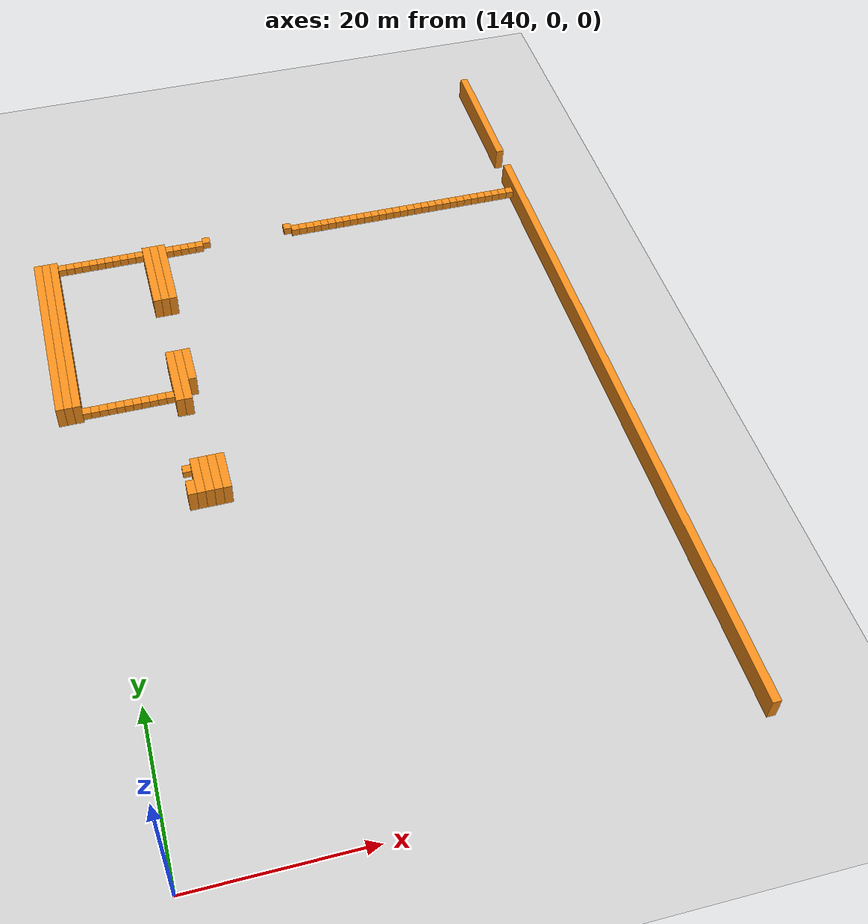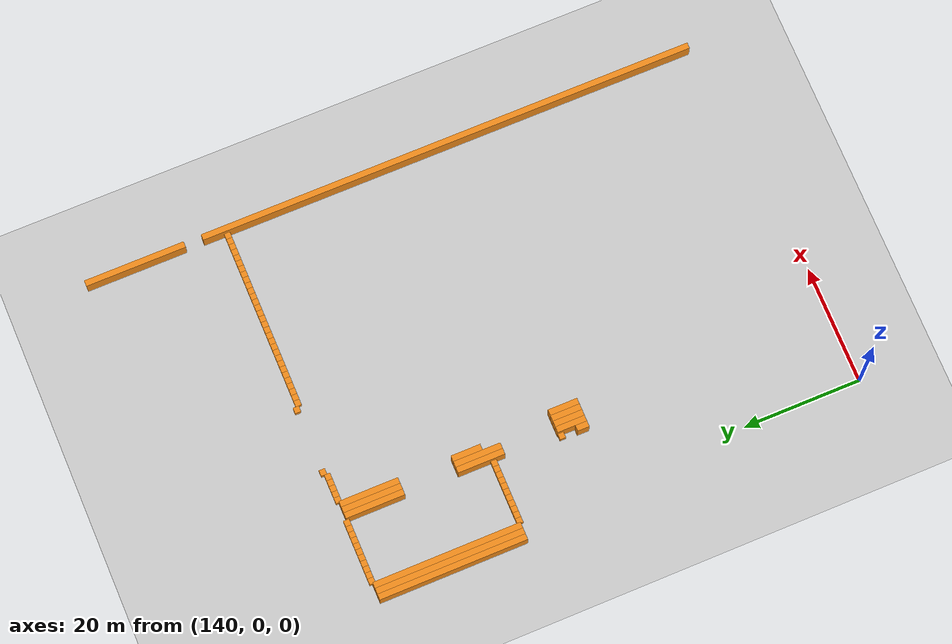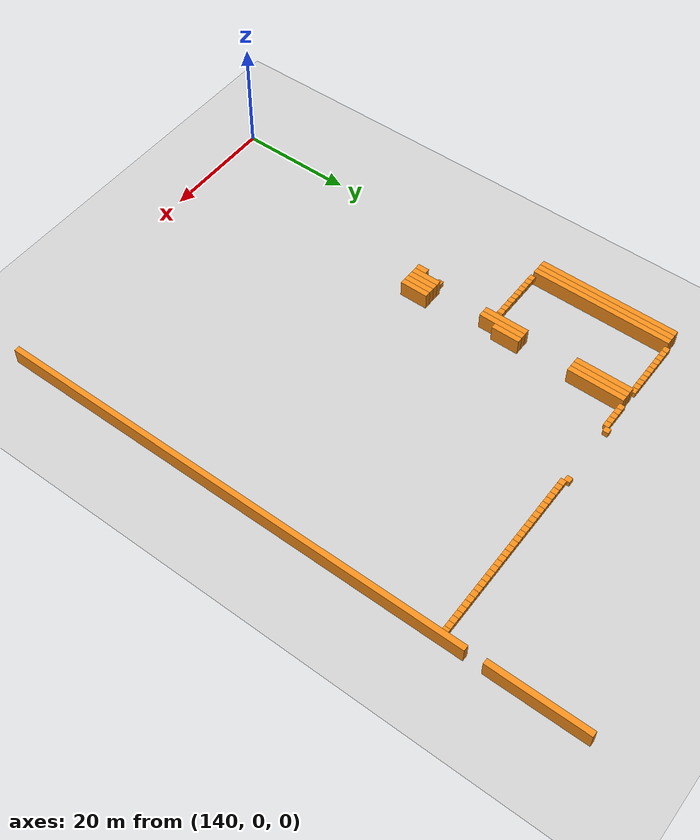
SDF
<sdf version="1.6">
 <world name="default">
  <include><uri>model://ground_plane</uri></include>
  <model name="unit_box_1458">
   <pose>136.50    71.50     1.50 0 0 0</pose>
   <static>1</static>
   <link name="link">
    <inertial>
     <mass>5000</mass>
     <inertia><ixx>200</ixx><ixy>0</ixy><ixz>0</ixz><iyy>200</iyy><iyz>0</iyz><izz>200</izz></inertia>
    </inertial>
    <collision name="collision"><geometry><box><size>1 25 3</size></box></geometry></collision>
    <visual name="visual">
     <geometry><box><size>1 25 3</size></box></geometry>
     <material>
      <script><name>Gazebo/Orange</name><uri>file://media/materials/scripts/gazebo.material</uri></script>
     </material>
    </visual>
   </link>
  </model>
  <model name="unit_box_1472">
   <pose>137.50    71.50     1.50 0 0 0</pose>
   <static>1</static>
   <link name="link">
    <inertial>
     <mass>5000</mass>
     <inertia><ixx>200</ixx><ixy>0</ixy><ixz>0</ixz><iyy>200</iyy><iyz>0</iyz><izz>200</izz></inertia>
    </inertial>
    <collision name="collision"><geometry><box><size>1 25 3</size></box></geometry></collision>
    <visual name="visual">
     <geometry><box><size>1 25 3</size></box></geometry>
     <material>
      <script><name>Gazebo/Orange</name><uri>file://media/materials/scripts/gazebo.material</uri></script>
     </material>
    </visual>
   </link>
  </model>
  <model name="unit_box_1485">
   <pose>138.50    71.50     1.50 0 0 0</pose>
   <static>1</static>
   <link name="link">
    <inertial>
     <mass>5000</mass>
     <inertia><ixx>200</ixx><ixy>0</ixy><ixz>0</ixz><iyy>200</iyy><iyz>0</iyz><izz>200</izz></inertia>
    </inertial>
    <collision name="collision"><geometry><box><size>1 25 3</size></box></geometry></collision>
    <visual name="visual">
     <geometry><box><size>1 25 3</size></box></geometry>
     <material>
      <script><name>Gazebo/Orange</name><uri>file://media/materials/scripts/gazebo.material</uri></script>
     </material>
    </visual>
   </link>
  </model>
  <model name="unit_box_1498">
   <pose>139.50    59.00     1.50 0 0 0</pose>
   <static>1</static>
   <link name="link">
    <inertial>
     <mass>5000</mass>
     <inertia><ixx>200</ixx><ixy>0</ixy><ixz>0</ixz><iyy>200</iyy><iyz>0</iyz><izz>200</izz></inertia>
    </inertial>
    <collision name="collision"><geometry><box><size>1 1 1</size></box></geometry></collision>
    <visual name="visual">
     <geometry><box><size>1 1 1</size></box></geometry>
     <material>
      <script><name>Gazebo/Orange</name><uri>file://media/materials/scripts/gazebo.material</uri></script>
     </material>
    </visual>
   </link>
  </model>
  <model name="unit_box_1499">
   <pose>139.50    84.00     1.50 0 0 0</pose>
   <static>1</static>
   <link name="link">
    <inertial>
     <mass>5000</mass>
     <inertia><ixx>200</ixx><ixy>0</ixy><ixz>0</ixz><iyy>200</iyy><iyz>0</iyz><izz>200</izz></inertia>
    </inertial>
    <collision name="collision"><geometry><box><size>1 1 1</size></box></geometry></collision>
    <visual name="visual">
     <geometry><box><size>1 1 1</size></box></geometry>
     <material>
      <script><name>Gazebo/Orange</name><uri>file://media/materials/scripts/gazebo.material</uri></script>
     </material>
    </visual>
   </link>
  </model>
  <model name="unit_box_1511">
   <pose>140.50    59.00     1.50 0 0 0</pose>
   <static>1</static>
   <link name="link">
    <inertial>
     <mass>5000</mass>
     <inertia><ixx>200</ixx><ixy>0</ixy><ixz>0</ixz><iyy>200</iyy><iyz>0</iyz><izz>200</izz></inertia>
    </inertial>
    <collision name="collision"><geometry><box><size>1 1 1</size></box></geometry></collision>
    <visual name="visual">
     <geometry><box><size>1 1 1</size></box></geometry>
     <material>
      <script><name>Gazebo/Orange</name><uri>file://media/materials/scripts/gazebo.material</uri></script>
     </material>
    </visual>
   </link>
  </model>
  <model name="unit_box_1512">
   <pose>140.50    84.00     1.50 0 0 0</pose>
   <static>1</static>
   <link name="link">
    <inertial>
     <mass>5000</mass>
     <inertia><ixx>200</ixx><ixy>0</ixy><ixz>0</ixz><iyy>200</iyy><iyz>0</iyz><izz>200</izz></inertia>
    </inertial>
    <collision name="collision"><geometry><box><size>1 1 1</size></box></geometry></collision>
    <visual name="visual">
     <geometry><box><size>1 1 1</size></box></geometry>
     <material>
      <script><name>Gazebo/Orange</name><uri>file://media/materials/scripts/gazebo.material</uri></script>
     </material>
    </visual>
   </link>
  </model>
  <model name="unit_box_1525">
   <pose>141.50    59.00     1.50 0 0 0</pose>
   <static>1</static>
   <link name="link">
    <inertial>
     <mass>5000</mass>
     <inertia><ixx>200</ixx><ixy>0</ixy><ixz>0</ixz><iyy>200</iyy><iyz>0</iyz><izz>200</izz></inertia>
    </inertial>
    <collision name="collision"><geometry><box><size>1 1 1</size></box></geometry></collision>
    <visual name="visual">
     <geometry><box><size>1 1 1</size></box></geometry>
     <material>
      <script><name>Gazebo/Orange</name><uri>file://media/materials/scripts/gazebo.material</uri></script>
     </material>
    </visual>
   </link>
  </model>
  <model name="unit_box_1526">
   <pose>141.50    84.00     1.50 0 0 0</pose>
   <static>1</static>
   <link name="link">
    <inertial>
     <mass>5000</mass>
     <inertia><ixx>200</ixx><ixy>0</ixy><ixz>0</ixz><iyy>200</iyy><iyz>0</iyz><izz>200</izz></inertia>
    </inertial>
    <collision name="collision"><geometry><box><size>1 1 1</size></box></geometry></collision>
    <visual name="visual">
     <geometry><box><size>1 1 1</size></box></geometry>
     <material>
      <script><name>Gazebo/Orange</name><uri>file://media/materials/scripts/gazebo.material</uri></script>
     </material>
    </visual>
   </link>
  </model>
  <model name="unit_box_1533">
   <pose>142.50    59.00     1.50 0 0 0</pose>
   <static>1</static>
   <link name="link">
    <inertial>
     <mass>5000</mass>
     <inertia><ixx>200</ixx><ixy>0</ixy><ixz>0</ixz><iyy>200</iyy><iyz>0</iyz><izz>200</izz></inertia>
    </inertial>
    <collision name="collision"><geometry><box><size>1 1 1</size></box></geometry></collision>
    <visual name="visual">
     <geometry><box><size>1 1 1</size></box></geometry>
     <material>
      <script><name>Gazebo/Orange</name><uri>file://media/materials/scripts/gazebo.material</uri></script>
     </material>
    </visual>
   </link>
  </model>
  <model name="unit_box_1534">
   <pose>142.50    84.00     1.50 0 0 0</pose>
   <static>1</static>
   <link name="link">
    <inertial>
     <mass>5000</mass>
     <inertia><ixx>200</ixx><ixy>0</ixy><ixz>0</ixz><iyy>200</iyy><iyz>0</iyz><izz>200</izz></inertia>
    </inertial>
    <collision name="collision"><geometry><box><size>1 1 1</size></box></geometry></collision>
    <visual name="visual">
     <geometry><box><size>1 1 1</size></box></geometry>
     <material>
      <script><name>Gazebo/Orange</name><uri>file://media/materials/scripts/gazebo.material</uri></script>
     </material>
    </visual>
   </link>
  </model>
  <model name="unit_box_1540">
   <pose>143.50    59.00     1.50 0 0 0</pose>
   <static>1</static>
   <link name="link">
    <inertial>
     <mass>5000</mass>
     <inertia><ixx>200</ixx><ixy>0</ixy><ixz>0</ixz><iyy>200</iyy><iyz>0</iyz><izz>200</izz></inertia>
    </inertial>
    <collision name="collision"><geometry><box><size>1 1 1</size></box></geometry></collision>
    <visual name="visual">
     <geometry><box><size>1 1 1</size></box></geometry>
     <material>
      <script><name>Gazebo/Orange</name><uri>file://media/materials/scripts/gazebo.material</uri></script>
     </material>
    </visual>
   </link>
  </model>
  <model name="unit_box_1541">
   <pose>143.50    84.00     1.50 0 0 0</pose>
   <static>1</static>
   <link name="link">
    <inertial>
     <mass>5000</mass>
     <inertia><ixx>200</ixx><ixy>0</ixy><ixz>0</ixz><iyy>200</iyy><iyz>0</iyz><izz>200</izz></inertia>
    </inertial>
    <collision name="collision"><geometry><box><size>1 1 1</size></box></geometry></collision>
    <visual name="visual">
     <geometry><box><size>1 1 1</size></box></geometry>
     <material>
      <script><name>Gazebo/Orange</name><uri>file://media/materials/scripts/gazebo.material</uri></script>
     </material>
    </visual>
   </link>
  </model>
  <model name="unit_box_1547">
   <pose>144.50    59.00     1.50 0 0 0</pose>
   <static>1</static>
   <link name="link">
    <inertial>
     <mass>5000</mass>
     <inertia><ixx>200</ixx><ixy>0</ixy><ixz>0</ixz><iyy>200</iyy><iyz>0</iyz><izz>200</izz></inertia>
    </inertial>
    <collision name="collision"><geometry><box><size>1 1 1</size></box></geometry></collision>
    <visual name="visual">
     <geometry><box><size>1 1 1</size></box></geometry>
     <material>
      <script><name>Gazebo/Orange</name><uri>file://media/materials/scripts/gazebo.material</uri></script>
     </material>
    </visual>
   </link>
  </model>
  <model name="unit_box_1548">
   <pose>144.50    84.00     1.50 0 0 0</pose>
   <static>1</static>
   <link name="link">
    <inertial>
     <mass>5000</mass>
     <inertia><ixx>200</ixx><ixy>0</ixy><ixz>0</ixz><iyy>200</iyy><iyz>0</iyz><izz>200</izz></inertia>
    </inertial>
    <collision name="collision"><geometry><box><size>1 1 1</size></box></geometry></collision>
    <visual name="visual">
     <geometry><box><size>1 1 1</size></box></geometry>
     <material>
      <script><name>Gazebo/Orange</name><uri>file://media/materials/scripts/gazebo.material</uri></script>
     </material>
    </visual>
   </link>
  </model>
  <model name="unit_box_1554">
   <pose>145.50    59.00     1.50 0 0 0</pose>
   <static>1</static>
   <link name="link">
    <inertial>
     <mass>5000</mass>
     <inertia><ixx>200</ixx><ixy>0</ixy><ixz>0</ixz><iyy>200</iyy><iyz>0</iyz><izz>200</izz></inertia>
    </inertial>
    <collision name="collision"><geometry><box><size>1 1 1</size></box></geometry></collision>
    <visual name="visual">
     <geometry><box><size>1 1 1</size></box></geometry>
     <material>
      <script><name>Gazebo/Orange</name><uri>file://media/materials/scripts/gazebo.material</uri></script>
     </material>
    </visual>
   </link>
  </model>
  <model name="unit_box_1555">
   <pose>145.50    84.00     1.50 0 0 0</pose>
   <static>1</static>
   <link name="link">
    <inertial>
     <mass>5000</mass>
     <inertia><ixx>200</ixx><ixy>0</ixy><ixz>0</ixz><iyy>200</iyy><iyz>0</iyz><izz>200</izz></inertia>
    </inertial>
    <collision name="collision"><geometry><box><size>1 1 1</size></box></geometry></collision>
    <visual name="visual">
     <geometry><box><size>1 1 1</size></box></geometry>
     <material>
      <script><name>Gazebo/Orange</name><uri>file://media/materials/scripts/gazebo.material</uri></script>
     </material>
    </visual>
   </link>
  </model>
  <model name="unit_box_1561">
   <pose>146.50    59.00     1.50 0 0 0</pose>
   <static>1</static>
   <link name="link">
    <inertial>
     <mass>5000</mass>
     <inertia><ixx>200</ixx><ixy>0</ixy><ixz>0</ixz><iyy>200</iyy><iyz>0</iyz><izz>200</izz></inertia>
    </inertial>
    <collision name="collision"><geometry><box><size>1 1 1</size></box></geometry></collision>
    <visual name="visual">
     <geometry><box><size>1 1 1</size></box></geometry>
     <material>
      <script><name>Gazebo/Orange</name><uri>file://media/materials/scripts/gazebo.material</uri></script>
     </material>
    </visual>
   </link>
  </model>
  <model name="unit_box_1562">
   <pose>146.50    84.00     1.50 0 0 0</pose>
   <static>1</static>
   <link name="link">
    <inertial>
     <mass>5000</mass>
     <inertia><ixx>200</ixx><ixy>0</ixy><ixz>0</ixz><iyy>200</iyy><iyz>0</iyz><izz>200</izz></inertia>
    </inertial>
    <collision name="collision"><geometry><box><size>1 1 1</size></box></geometry></collision>
    <visual name="visual">
     <geometry><box><size>1 1 1</size></box></geometry>
     <material>
      <script><name>Gazebo/Orange</name><uri>file://media/materials/scripts/gazebo.material</uri></script>
     </material>
    </visual>
   </link>
  </model>
  <model name="unit_box_1568">
   <pose>147.50    59.00     1.50 0 0 0</pose>
   <static>1</static>
   <link name="link">
    <inertial>
     <mass>5000</mass>
     <inertia><ixx>200</ixx><ixy>0</ixy><ixz>0</ixz><iyy>200</iyy><iyz>0</iyz><izz>200</izz></inertia>
    </inertial>
    <collision name="collision"><geometry><box><size>1 1 1</size></box></geometry></collision>
    <visual name="visual">
     <geometry><box><size>1 1 1</size></box></geometry>
     <material>
      <script><name>Gazebo/Orange</name><uri>file://media/materials/scripts/gazebo.material</uri></script>
     </material>
    </visual>
   </link>
  </model>
  <model name="unit_box_1569">
   <pose>147.50    84.00     1.50 0 0 0</pose>
   <static>1</static>
   <link name="link">
    <inertial>
     <mass>5000</mass>
     <inertia><ixx>200</ixx><ixy>0</ixy><ixz>0</ixz><iyy>200</iyy><iyz>0</iyz><izz>200</izz></inertia>
    </inertial>
    <collision name="collision"><geometry><box><size>1 1 1</size></box></geometry></collision>
    <visual name="visual">
     <geometry><box><size>1 1 1</size></box></geometry>
     <material>
      <script><name>Gazebo/Orange</name><uri>file://media/materials/scripts/gazebo.material</uri></script>
     </material>
    </visual>
   </link>
  </model>
  <model name="unit_box_1576">
   <pose>148.50    59.00     1.50 0 0 0</pose>
   <static>1</static>
   <link name="link">
    <inertial>
     <mass>5000</mass>
     <inertia><ixx>200</ixx><ixy>0</ixy><ixz>0</ixz><iyy>200</iyy><iyz>0</iyz><izz>200</izz></inertia>
    </inertial>
    <collision name="collision"><geometry><box><size>1 1 1</size></box></geometry></collision>
    <visual name="visual">
     <geometry><box><size>1 1 1</size></box></geometry>
     <material>
      <script><name>Gazebo/Orange</name><uri>file://media/materials/scripts/gazebo.material</uri></script>
     </material>
    </visual>
   </link>
  </model>
  <model name="unit_box_1577">
   <pose>148.50    84.00     1.50 0 0 0</pose>
   <static>1</static>
   <link name="link">
    <inertial>
     <mass>5000</mass>
     <inertia><ixx>200</ixx><ixy>0</ixy><ixz>0</ixz><iyy>200</iyy><iyz>0</iyz><izz>200</izz></inertia>
    </inertial>
    <collision name="collision"><geometry><box><size>1 1 1</size></box></geometry></collision>
    <visual name="visual">
     <geometry><box><size>1 1 1</size></box></geometry>
     <material>
      <script><name>Gazebo/Orange</name><uri>file://media/materials/scripts/gazebo.material</uri></script>
     </material>
    </visual>
   </link>
  </model>
  <model name="unit_box_1583">
   <pose>149.50    44.00     1.50 0 0 0</pose>
   <static>1</static>
   <link name="link">
    <inertial>
     <mass>5000</mass>
     <inertia><ixx>200</ixx><ixy>0</ixy><ixz>0</ixz><iyy>200</iyy><iyz>0</iyz><izz>200</izz></inertia>
    </inertial>
    <collision name="collision"><geometry><box><size>1 2 3</size></box></geometry></collision>
    <visual name="visual">
     <geometry><box><size>1 2 3</size></box></geometry>
     <material>
      <script><name>Gazebo/Orange</name><uri>file://media/materials/scripts/gazebo.material</uri></script>
     </material>
    </visual>
   </link>
  </model>
  <model name="unit_box_1584">
   <pose>149.50    47.50     1.50 0 0 0</pose>
   <static>1</static>
   <link name="link">
    <inertial>
     <mass>5000</mass>
     <inertia><ixx>200</ixx><ixy>0</ixy><ixz>0</ixz><iyy>200</iyy><iyz>0</iyz><izz>200</izz></inertia>
    </inertial>
    <collision name="collision"><geometry><box><size>1 1 1</size></box></geometry></collision>
    <visual name="visual">
     <geometry><box><size>1 1 1</size></box></geometry>
     <material>
      <script><name>Gazebo/Orange</name><uri>file://media/materials/scripts/gazebo.material</uri></script>
     </material>
    </visual>
   </link>
  </model>
  <model name="unit_box_1585">
   <pose>149.50    59.00     1.50 0 0 0</pose>
   <static>1</static>
   <link name="link">
    <inertial>
     <mass>5000</mass>
     <inertia><ixx>200</ixx><ixy>0</ixy><ixz>0</ixz><iyy>200</iyy><iyz>0</iyz><izz>200</izz></inertia>
    </inertial>
    <collision name="collision"><geometry><box><size>1 1 1</size></box></geometry></collision>
    <visual name="visual">
     <geometry><box><size>1 1 1</size></box></geometry>
     <material>
      <script><name>Gazebo/Orange</name><uri>file://media/materials/scripts/gazebo.material</uri></script>
     </material>
    </visual>
   </link>
  </model>
  <model name="unit_box_1586">
   <pose>149.50    84.00     1.50 0 0 0</pose>
   <static>1</static>
   <link name="link">
    <inertial>
     <mass>5000</mass>
     <inertia><ixx>200</ixx><ixy>0</ixy><ixz>0</ixz><iyy>200</iyy><iyz>0</iyz><izz>200</izz></inertia>
    </inertial>
    <collision name="collision"><geometry><box><size>1 1 1</size></box></geometry></collision>
    <visual name="visual">
     <geometry><box><size>1 1 1</size></box></geometry>
     <material>
      <script><name>Gazebo/Orange</name><uri>file://media/materials/scripts/gazebo.material</uri></script>
     </material>
    </visual>
   </link>
  </model>
  <model name="unit_box_1592">
   <pose>150.50    45.50     1.50 0 0 0</pose>
   <static>1</static>
   <link name="link">
    <inertial>
     <mass>5000</mass>
     <inertia><ixx>200</ixx><ixy>0</ixy><ixz>0</ixz><iyy>200</iyy><iyz>0</iyz><izz>200</izz></inertia>
    </inertial>
    <collision name="collision"><geometry><box><size>1 5 3</size></box></geometry></collision>
    <visual name="visual">
     <geometry><box><size>1 5 3</size></box></geometry>
     <material>
      <script><name>Gazebo/Orange</name><uri>file://media/materials/scripts/gazebo.material</uri></script>
     </material>
    </visual>
   </link>
  </model>
  <model name="unit_box_1593">
   <pose>150.50    61.00     1.50 0 0 0</pose>
   <static>1</static>
   <link name="link">
    <inertial>
     <mass>5000</mass>
     <inertia><ixx>200</ixx><ixy>0</ixy><ixz>0</ixz><iyy>200</iyy><iyz>0</iyz><izz>200</izz></inertia>
    </inertial>
    <collision name="collision"><geometry><box><size>1 8 3</size></box></geometry></collision>
    <visual name="visual">
     <geometry><box><size>1 8 3</size></box></geometry>
     <material>
      <script><name>Gazebo/Orange</name><uri>file://media/materials/scripts/gazebo.material</uri></script>
     </material>
    </visual>
   </link>
  </model>
  <model name="unit_box_1594">
   <pose>150.50    79.00     1.50 0 0 0</pose>
   <static>1</static>
   <link name="link">
    <inertial>
     <mass>5000</mass>
     <inertia><ixx>200</ixx><ixy>0</ixy><ixz>0</ixz><iyy>200</iyy><iyz>0</iyz><izz>200</izz></inertia>
    </inertial>
    <collision name="collision"><geometry><box><size>1 10 3</size></box></geometry></collision>
    <visual name="visual">
     <geometry><box><size>1 10 3</size></box></geometry>
     <material>
      <script><name>Gazebo/Orange</name><uri>file://media/materials/scripts/gazebo.material</uri></script>
     </material>
    </visual>
   </link>
  </model>
  <model name="unit_box_1600">
   <pose>151.50    45.50     1.50 0 0 0</pose>
   <static>1</static>
   <link name="link">
    <inertial>
     <mass>5000</mass>
     <inertia><ixx>200</ixx><ixy>0</ixy><ixz>0</ixz><iyy>200</iyy><iyz>0</iyz><izz>200</izz></inertia>
    </inertial>
    <collision name="collision"><geometry><box><size>1 5 3</size></box></geometry></collision>
    <visual name="visual">
     <geometry><box><size>1 5 3</size></box></geometry>
     <material>
      <script><name>Gazebo/Orange</name><uri>file://media/materials/scripts/gazebo.material</uri></script>
     </material>
    </visual>
   </link>
  </model>
  <model name="unit_box_1601">
   <pose>151.50    61.00     1.50 0 0 0</pose>
   <static>1</static>
   <link name="link">
    <inertial>
     <mass>5000</mass>
     <inertia><ixx>200</ixx><ixy>0</ixy><ixz>0</ixz><iyy>200</iyy><iyz>0</iyz><izz>200</izz></inertia>
    </inertial>
    <collision name="collision"><geometry><box><size>1 8 3</size></box></geometry></collision>
    <visual name="visual">
     <geometry><box><size>1 8 3</size></box></geometry>
     <material>
      <script><name>Gazebo/Orange</name><uri>file://media/materials/scripts/gazebo.material</uri></script>
     </material>
    </visual>
   </link>
  </model>
  <model name="unit_box_1602">
   <pose>151.50    79.00     1.50 0 0 0</pose>
   <static>1</static>
   <link name="link">
    <inertial>
     <mass>5000</mass>
     <inertia><ixx>200</ixx><ixy>0</ixy><ixz>0</ixz><iyy>200</iyy><iyz>0</iyz><izz>200</izz></inertia>
    </inertial>
    <collision name="collision"><geometry><box><size>1 10 3</size></box></geometry></collision>
    <visual name="visual">
     <geometry><box><size>1 10 3</size></box></geometry>
     <material>
      <script><name>Gazebo/Orange</name><uri>file://media/materials/scripts/gazebo.material</uri></script>
     </material>
    </visual>
   </link>
  </model>
  <model name="unit_box_1609">
   <pose>152.50    45.50     1.50 0 0 0</pose>
   <static>1</static>
   <link name="link">
    <inertial>
     <mass>5000</mass>
     <inertia><ixx>200</ixx><ixy>0</ixy><ixz>0</ixz><iyy>200</iyy><iyz>0</iyz><izz>200</izz></inertia>
    </inertial>
    <collision name="collision"><geometry><box><size>1 5 3</size></box></geometry></collision>
    <visual name="visual">
     <geometry><box><size>1 5 3</size></box></geometry>
     <material>
      <script><name>Gazebo/Orange</name><uri>file://media/materials/scripts/gazebo.material</uri></script>
     </material>
    </visual>
   </link>
  </model>
  <model name="unit_box_1610">
   <pose>152.50    62.50     1.50 0 0 0</pose>
   <static>1</static>
   <link name="link">
    <inertial>
     <mass>5000</mass>
     <inertia><ixx>200</ixx><ixy>0</ixy><ixz>0</ixz><iyy>200</iyy><iyz>0</iyz><izz>200</izz></inertia>
    </inertial>
    <collision name="collision"><geometry><box><size>1 5 3</size></box></geometry></collision>
    <visual name="visual">
     <geometry><box><size>1 5 3</size></box></geometry>
     <material>
      <script><name>Gazebo/Orange</name><uri>file://media/materials/scripts/gazebo.material</uri></script>
     </material>
    </visual>
   </link>
  </model>
  <model name="unit_box_1611">
   <pose>152.50    79.00     1.50 0 0 0</pose>
   <static>1</static>
   <link name="link">
    <inertial>
     <mass>5000</mass>
     <inertia><ixx>200</ixx><ixy>0</ixy><ixz>0</ixz><iyy>200</iyy><iyz>0</iyz><izz>200</izz></inertia>
    </inertial>
    <collision name="collision"><geometry><box><size>1 10 3</size></box></geometry></collision>
    <visual name="visual">
     <geometry><box><size>1 10 3</size></box></geometry>
     <material>
      <script><name>Gazebo/Orange</name><uri>file://media/materials/scripts/gazebo.material</uri></script>
     </material>
    </visual>
   </link>
  </model>
  <model name="unit_box_1618">
   <pose>153.50    45.50     1.50 0 0 0</pose>
   <static>1</static>
   <link name="link">
    <inertial>
     <mass>5000</mass>
     <inertia><ixx>200</ixx><ixy>0</ixy><ixz>0</ixz><iyy>200</iyy><iyz>0</iyz><izz>200</izz></inertia>
    </inertial>
    <collision name="collision"><geometry><box><size>1 5 3</size></box></geometry></collision>
    <visual name="visual">
     <geometry><box><size>1 5 3</size></box></geometry>
     <material>
      <script><name>Gazebo/Orange</name><uri>file://media/materials/scripts/gazebo.material</uri></script>
     </material>
    </visual>
   </link>
  </model>
  <model name="unit_box_1619">
   <pose>153.50    84.00     1.50 0 0 0</pose>
   <static>1</static>
   <link name="link">
    <inertial>
     <mass>5000</mass>
     <inertia><ixx>200</ixx><ixy>0</ixy><ixz>0</ixz><iyy>200</iyy><iyz>0</iyz><izz>200</izz></inertia>
    </inertial>
    <collision name="collision"><geometry><box><size>1 1 1</size></box></geometry></collision>
    <visual name="visual">
     <geometry><box><size>1 1 1</size></box></geometry>
     <material>
      <script><name>Gazebo/Orange</name><uri>file://media/materials/scripts/gazebo.material</uri></script>
     </material>
    </visual>
   </link>
  </model>
  <model name="unit_box_1627">
   <pose>154.50    84.00     1.50 0 0 0</pose>
   <static>1</static>
   <link name="link">
    <inertial>
     <mass>5000</mass>
     <inertia><ixx>200</ixx><ixy>0</ixy><ixz>0</ixz><iyy>200</iyy><iyz>0</iyz><izz>200</izz></inertia>
    </inertial>
    <collision name="collision"><geometry><box><size>1 1 1</size></box></geometry></collision>
    <visual name="visual">
     <geometry><box><size>1 1 1</size></box></geometry>
     <material>
      <script><name>Gazebo/Orange</name><uri>file://media/materials/scripts/gazebo.material</uri></script>
     </material>
    </visual>
   </link>
  </model>
  <model name="unit_box_1637">
   <pose>155.50    84.00     1.50 0 0 0</pose>
   <static>1</static>
   <link name="link">
    <inertial>
     <mass>5000</mass>
     <inertia><ixx>200</ixx><ixy>0</ixy><ixz>0</ixz><iyy>200</iyy><iyz>0</iyz><izz>200</izz></inertia>
    </inertial>
    <collision name="collision"><geometry><box><size>1 1 1</size></box></geometry></collision>
    <visual name="visual">
     <geometry><box><size>1 1 1</size></box></geometry>
     <material>
      <script><name>Gazebo/Orange</name><uri>file://media/materials/scripts/gazebo.material</uri></script>
     </material>
    </visual>
   </link>
  </model>
  <model name="unit_box_1645">
   <pose>156.50    84.00     1.50 0 0 0</pose>
   <static>1</static>
   <link name="link">
    <inertial>
     <mass>5000</mass>
     <inertia><ixx>200</ixx><ixy>0</ixy><ixz>0</ixz><iyy>200</iyy><iyz>0</iyz><izz>200</izz></inertia>
    </inertial>
    <collision name="collision"><geometry><box><size>1 1 1</size></box></geometry></collision>
    <visual name="visual">
     <geometry><box><size>1 1 1</size></box></geometry>
     <material>
      <script><name>Gazebo/Orange</name><uri>file://media/materials/scripts/gazebo.material</uri></script>
     </material>
    </visual>
   </link>
  </model>
  <model name="unit_box_1653">
   <pose>157.50    84.00     1.50 0 0 0</pose>
   <static>1</static>
   <link name="link">
    <inertial>
     <mass>5000</mass>
     <inertia><ixx>200</ixx><ixy>0</ixy><ixz>0</ixz><iyy>200</iyy><iyz>0</iyz><izz>200</izz></inertia>
    </inertial>
    <collision name="collision"><geometry><box><size>1 1 1</size></box></geometry></collision>
    <visual name="visual">
     <geometry><box><size>1 1 1</size></box></geometry>
     <material>
      <script><name>Gazebo/Orange</name><uri>file://media/materials/scripts/gazebo.material</uri></script>
     </material>
    </visual>
   </link>
  </model>
  <model name="unit_box_1661">
   <pose>158.50    84.50     1.50 0 0 0</pose>
   <static>1</static>
   <link name="link">
    <inertial>
     <mass>5000</mass>
     <inertia><ixx>200</ixx><ixy>0</ixy><ixz>0</ixz><iyy>200</iyy><iyz>0</iyz><izz>200</izz></inertia>
    </inertial>
    <collision name="collision"><geometry><box><size>1 1 1</size></box></geometry></collision>
    <visual name="visual">
     <geometry><box><size>1 1 1</size></box></geometry>
     <material>
      <script><name>Gazebo/Orange</name><uri>file://media/materials/scripts/gazebo.material</uri></script>
     </material>
    </visual>
   </link>
  </model>
  <model name="unit_box_1742">
   <pose>169.50    84.50     1.50 0 0 0</pose>
   <static>1</static>
   <link name="link">
    <inertial>
     <mass>5000</mass>
     <inertia><ixx>200</ixx><ixy>0</ixy><ixz>0</ixz><iyy>200</iyy><iyz>0</iyz><izz>200</izz></inertia>
    </inertial>
    <collision name="collision"><geometry><box><size>1 1 1</size></box></geometry></collision>
    <visual name="visual">
     <geometry><box><size>1 1 1</size></box></geometry>
     <material>
      <script><name>Gazebo/Orange</name><uri>file://media/materials/scripts/gazebo.material</uri></script>
     </material>
    </visual>
   </link>
  </model>
  <model name="unit_box_1749">
   <pose>170.50    84.00     1.50 0 0 0</pose>
   <static>1</static>
   <link name="link">
    <inertial>
     <mass>5000</mass>
     <inertia><ixx>200</ixx><ixy>0</ixy><ixz>0</ixz><iyy>200</iyy><iyz>0</iyz><izz>200</izz></inertia>
    </inertial>
    <collision name="collision"><geometry><box><size>1 1 1</size></box></geometry></collision>
    <visual name="visual">
     <geometry><box><size>1 1 1</size></box></geometry>
     <material>
      <script><name>Gazebo/Orange</name><uri>file://media/materials/scripts/gazebo.material</uri></script>
     </material>
    </visual>
   </link>
  </model>
  <model name="unit_box_1756">
   <pose>171.50    84.00     1.50 0 0 0</pose>
   <static>1</static>
   <link name="link">
    <inertial>
     <mass>5000</mass>
     <inertia><ixx>200</ixx><ixy>0</ixy><ixz>0</ixz><iyy>200</iyy><iyz>0</iyz><izz>200</izz></inertia>
    </inertial>
    <collision name="collision"><geometry><box><size>1 1 1</size></box></geometry></collision>
    <visual name="visual">
     <geometry><box><size>1 1 1</size></box></geometry>
     <material>
      <script><name>Gazebo/Orange</name><uri>file://media/materials/scripts/gazebo.material</uri></script>
     </material>
    </visual>
   </link>
  </model>
  <model name="unit_box_1763">
   <pose>172.50    84.00     1.50 0 0 0</pose>
   <static>1</static>
   <link name="link">
    <inertial>
     <mass>5000</mass>
     <inertia><ixx>200</ixx><ixy>0</ixy><ixz>0</ixz><iyy>200</iyy><iyz>0</iyz><izz>200</izz></inertia>
    </inertial>
    <collision name="collision"><geometry><box><size>1 1 1</size></box></geometry></collision>
    <visual name="visual">
     <geometry><box><size>1 1 1</size></box></geometry>
     <material>
      <script><name>Gazebo/Orange</name><uri>file://media/materials/scripts/gazebo.material</uri></script>
     </material>
    </visual>
   </link>
  </model>
  <model name="unit_box_1770">
   <pose>173.50    84.00     1.50 0 0 0</pose>
   <static>1</static>
   <link name="link">
    <inertial>
     <mass>5000</mass>
     <inertia><ixx>200</ixx><ixy>0</ixy><ixz>0</ixz><iyy>200</iyy><iyz>0</iyz><izz>200</izz></inertia>
    </inertial>
    <collision name="collision"><geometry><box><size>1 1 1</size></box></geometry></collision>
    <visual name="visual">
     <geometry><box><size>1 1 1</size></box></geometry>
     <material>
      <script><name>Gazebo/Orange</name><uri>file://media/materials/scripts/gazebo.material</uri></script>
     </material>
    </visual>
   </link>
  </model>
  <model name="unit_box_1777">
   <pose>174.50    84.00     1.50 0 0 0</pose>
   <static>1</static>
   <link name="link">
    <inertial>
     <mass>5000</mass>
     <inertia><ixx>200</ixx><ixy>0</ixy><ixz>0</ixz><iyy>200</iyy><iyz>0</iyz><izz>200</izz></inertia>
    </inertial>
    <collision name="collision"><geometry><box><size>1 1 1</size></box></geometry></collision>
    <visual name="visual">
     <geometry><box><size>1 1 1</size></box></geometry>
     <material>
      <script><name>Gazebo/Orange</name><uri>file://media/materials/scripts/gazebo.material</uri></script>
     </material>
    </visual>
   </link>
  </model>
  <model name="unit_box_1784">
   <pose>175.50    84.00     1.50 0 0 0</pose>
   <static>1</static>
   <link name="link">
    <inertial>
     <mass>5000</mass>
     <inertia><ixx>200</ixx><ixy>0</ixy><ixz>0</ixz><iyy>200</iyy><iyz>0</iyz><izz>200</izz></inertia>
    </inertial>
    <collision name="collision"><geometry><box><size>1 1 1</size></box></geometry></collision>
    <visual name="visual">
     <geometry><box><size>1 1 1</size></box></geometry>
     <material>
      <script><name>Gazebo/Orange</name><uri>file://media/materials/scripts/gazebo.material</uri></script>
     </material>
    </visual>
   </link>
  </model>
  <model name="unit_box_1791">
   <pose>176.50    84.00     1.50 0 0 0</pose>
   <static>1</static>
   <link name="link">
    <inertial>
     <mass>5000</mass>
     <inertia><ixx>200</ixx><ixy>0</ixy><ixz>0</ixz><iyy>200</iyy><iyz>0</iyz><izz>200</izz></inertia>
    </inertial>
    <collision name="collision"><geometry><box><size>1 1 1</size></box></geometry></collision>
    <visual name="visual">
     <geometry><box><size>1 1 1</size></box></geometry>
     <material>
      <script><name>Gazebo/Orange</name><uri>file://media/materials/scripts/gazebo.material</uri></script>
     </material>
    </visual>
   </link>
  </model>
  <model name="unit_box_1798">
   <pose>177.50    84.00     1.50 0 0 0</pose>
   <static>1</static>
   <link name="link">
    <inertial>
     <mass>5000</mass>
     <inertia><ixx>200</ixx><ixy>0</ixy><ixz>0</ixz><iyy>200</iyy><iyz>0</iyz><izz>200</izz></inertia>
    </inertial>
    <collision name="collision"><geometry><box><size>1 1 1</size></box></geometry></collision>
    <visual name="visual">
     <geometry><box><size>1 1 1</size></box></geometry>
     <material>
      <script><name>Gazebo/Orange</name><uri>file://media/materials/scripts/gazebo.material</uri></script>
     </material>
    </visual>
   </link>
  </model>
  <model name="unit_box_1805">
   <pose>178.50    84.00     1.50 0 0 0</pose>
   <static>1</static>
   <link name="link">
    <inertial>
     <mass>5000</mass>
     <inertia><ixx>200</ixx><ixy>0</ixy><ixz>0</ixz><iyy>200</iyy><iyz>0</iyz><izz>200</izz></inertia>
    </inertial>
    <collision name="collision"><geometry><box><size>1 1 1</size></box></geometry></collision>
    <visual name="visual">
     <geometry><box><size>1 1 1</size></box></geometry>
     <material>
      <script><name>Gazebo/Orange</name><uri>file://media/materials/scripts/gazebo.material</uri></script>
     </material>
    </visual>
   </link>
  </model>
  <model name="unit_box_1813">
   <pose>179.50    84.00     1.50 0 0 0</pose>
   <static>1</static>
   <link name="link">
    <inertial>
     <mass>5000</mass>
     <inertia><ixx>200</ixx><ixy>0</ixy><ixz>0</ixz><iyy>200</iyy><iyz>0</iyz><izz>200</izz></inertia>
    </inertial>
    <collision name="collision"><geometry><box><size>1 1 1</size></box></geometry></collision>
    <visual name="visual">
     <geometry><box><size>1 1 1</size></box></geometry>
     <material>
      <script><name>Gazebo/Orange</name><uri>file://media/materials/scripts/gazebo.material</uri></script>
     </material>
    </visual>
   </link>
  </model>
  <model name="unit_box_1821">
   <pose>180.50    84.00     1.50 0 0 0</pose>
   <static>1</static>
   <link name="link">
    <inertial>
     <mass>5000</mass>
     <inertia><ixx>200</ixx><ixy>0</ixy><ixz>0</ixz><iyy>200</iyy><iyz>0</iyz><izz>200</izz></inertia>
    </inertial>
    <collision name="collision"><geometry><box><size>1 1 1</size></box></geometry></collision>
    <visual name="visual">
     <geometry><box><size>1 1 1</size></box></geometry>
     <material>
      <script><name>Gazebo/Orange</name><uri>file://media/materials/scripts/gazebo.material</uri></script>
     </material>
    </visual>
   </link>
  </model>
  <model name="unit_box_1830">
   <pose>181.50    84.00     1.50 0 0 0</pose>
   <static>1</static>
   <link name="link">
    <inertial>
     <mass>5000</mass>
     <inertia><ixx>200</ixx><ixy>0</ixy><ixz>0</ixz><iyy>200</iyy><iyz>0</iyz><izz>200</izz></inertia>
    </inertial>
    <collision name="collision"><geometry><box><size>1 1 1</size></box></geometry></collision>
    <visual name="visual">
     <geometry><box><size>1 1 1</size></box></geometry>
     <material>
      <script><name>Gazebo/Orange</name><uri>file://media/materials/scripts/gazebo.material</uri></script>
     </material>
    </visual>
   </link>
  </model>
  <model name="unit_box_1840">
   <pose>182.50    84.00     1.50 0 0 0</pose>
   <static>1</static>
   <link name="link">
    <inertial>
     <mass>5000</mass>
     <inertia><ixx>200</ixx><ixy>0</ixy><ixz>0</ixz><iyy>200</iyy><iyz>0</iyz><izz>200</izz></inertia>
    </inertial>
    <collision name="collision"><geometry><box><size>1 1 1</size></box></geometry></collision>
    <visual name="visual">
     <geometry><box><size>1 1 1</size></box></geometry>
     <material>
      <script><name>Gazebo/Orange</name><uri>file://media/materials/scripts/gazebo.material</uri></script>
     </material>
    </visual>
   </link>
  </model>
  <model name="unit_box_1849">
   <pose>183.50    84.00     1.50 0 0 0</pose>
   <static>1</static>
   <link name="link">
    <inertial>
     <mass>5000</mass>
     <inertia><ixx>200</ixx><ixy>0</ixy><ixz>0</ixz><iyy>200</iyy><iyz>0</iyz><izz>200</izz></inertia>
    </inertial>
    <collision name="collision"><geometry><box><size>1 1 1</size></box></geometry></collision>
    <visual name="visual">
     <geometry><box><size>1 1 1</size></box></geometry>
     <material>
      <script><name>Gazebo/Orange</name><uri>file://media/materials/scripts/gazebo.material</uri></script>
     </material>
    </visual>
   </link>
  </model>
  <model name="unit_box_1858">
   <pose>184.50    84.00     1.50 0 0 0</pose>
   <static>1</static>
   <link name="link">
    <inertial>
     <mass>5000</mass>
     <inertia><ixx>200</ixx><ixy>0</ixy><ixz>0</ixz><iyy>200</iyy><iyz>0</iyz><izz>200</izz></inertia>
    </inertial>
    <collision name="collision"><geometry><box><size>1 1 1</size></box></geometry></collision>
    <visual name="visual">
     <geometry><box><size>1 1 1</size></box></geometry>
     <material>
      <script><name>Gazebo/Orange</name><uri>file://media/materials/scripts/gazebo.material</uri></script>
     </material>
    </visual>
   </link>
  </model>
  <model name="unit_box_1867">
   <pose>185.50    84.00     1.50 0 0 0</pose>
   <static>1</static>
   <link name="link">
    <inertial>
     <mass>5000</mass>
     <inertia><ixx>200</ixx><ixy>0</ixy><ixz>0</ixz><iyy>200</iyy><iyz>0</iyz><izz>200</izz></inertia>
    </inertial>
    <collision name="collision"><geometry><box><size>1 1 1</size></box></geometry></collision>
    <visual name="visual">
     <geometry><box><size>1 1 1</size></box></geometry>
     <material>
      <script><name>Gazebo/Orange</name><uri>file://media/materials/scripts/gazebo.material</uri></script>
     </material>
    </visual>
   </link>
  </model>
  <model name="unit_box_1875">
   <pose>186.50    84.00     1.50 0 0 0</pose>
   <static>1</static>
   <link name="link">
    <inertial>
     <mass>5000</mass>
     <inertia><ixx>200</ixx><ixy>0</ixy><ixz>0</ixz><iyy>200</iyy><iyz>0</iyz><izz>200</izz></inertia>
    </inertial>
    <collision name="collision"><geometry><box><size>1 1 1</size></box></geometry></collision>
    <visual name="visual">
     <geometry><box><size>1 1 1</size></box></geometry>
     <material>
      <script><name>Gazebo/Orange</name><uri>file://media/materials/scripts/gazebo.material</uri></script>
     </material>
    </visual>
   </link>
  </model>
  <model name="unit_box_1883">
   <pose>187.50    84.00     1.50 0 0 0</pose>
   <static>1</static>
   <link name="link">
    <inertial>
     <mass>5000</mass>
     <inertia><ixx>200</ixx><ixy>0</ixy><ixz>0</ixz><iyy>200</iyy><iyz>0</iyz><izz>200</izz></inertia>
    </inertial>
    <collision name="collision"><geometry><box><size>1 1 1</size></box></geometry></collision>
    <visual name="visual">
     <geometry><box><size>1 1 1</size></box></geometry>
     <material>
      <script><name>Gazebo/Orange</name><uri>file://media/materials/scripts/gazebo.material</uri></script>
     </material>
    </visual>
   </link>
  </model>
  <model name="unit_box_1891">
   <pose>188.50    84.00     1.50 0 0 0</pose>
   <static>1</static>
   <link name="link">
    <inertial>
     <mass>5000</mass>
     <inertia><ixx>200</ixx><ixy>0</ixy><ixz>0</ixz><iyy>200</iyy><iyz>0</iyz><izz>200</izz></inertia>
    </inertial>
    <collision name="collision"><geometry><box><size>1 1 1</size></box></geometry></collision>
    <visual name="visual">
     <geometry><box><size>1 1 1</size></box></geometry>
     <material>
      <script><name>Gazebo/Orange</name><uri>file://media/materials/scripts/gazebo.material</uri></script>
     </material>
    </visual>
   </link>
  </model>
  <model name="unit_box_1899">
   <pose>189.50    84.00     1.50 0 0 0</pose>
   <static>1</static>
   <link name="link">
    <inertial>
     <mass>5000</mass>
     <inertia><ixx>200</ixx><ixy>0</ixy><ixz>0</ixz><iyy>200</iyy><iyz>0</iyz><izz>200</izz></inertia>
    </inertial>
    <collision name="collision"><geometry><box><size>1 1 1</size></box></geometry></collision>
    <visual name="visual">
     <geometry><box><size>1 1 1</size></box></geometry>
     <material>
      <script><name>Gazebo/Orange</name><uri>file://media/materials/scripts/gazebo.material</uri></script>
     </material>
    </visual>
   </link>
  </model>
  <model name="unit_box_1907">
   <pose>190.50    84.00     1.50 0 0 0</pose>
   <static>1</static>
   <link name="link">
    <inertial>
     <mass>5000</mass>
     <inertia><ixx>200</ixx><ixy>0</ixy><ixz>0</ixz><iyy>200</iyy><iyz>0</iyz><izz>200</izz></inertia>
    </inertial>
    <collision name="collision"><geometry><box><size>1 1 1</size></box></geometry></collision>
    <visual name="visual">
     <geometry><box><size>1 1 1</size></box></geometry>
     <material>
      <script><name>Gazebo/Orange</name><uri>file://media/materials/scripts/gazebo.material</uri></script>
     </material>
    </visual>
   </link>
  </model>
  <model name="unit_box_1915">
   <pose>191.50    84.00     1.50 0 0 0</pose>
   <static>1</static>
   <link name="link">
    <inertial>
     <mass>5000</mass>
     <inertia><ixx>200</ixx><ixy>0</ixy><ixz>0</ixz><iyy>200</iyy><iyz>0</iyz><izz>200</izz></inertia>
    </inertial>
    <collision name="collision"><geometry><box><size>1 1 1</size></box></geometry></collision>
    <visual name="visual">
     <geometry><box><size>1 1 1</size></box></geometry>
     <material>
      <script><name>Gazebo/Orange</name><uri>file://media/materials/scripts/gazebo.material</uri></script>
     </material>
    </visual>
   </link>
  </model>
  <model name="unit_box_1923">
   <pose>192.50    84.00     1.50 0 0 0</pose>
   <static>1</static>
   <link name="link">
    <inertial>
     <mass>5000</mass>
     <inertia><ixx>200</ixx><ixy>0</ixy><ixz>0</ixz><iyy>200</iyy><iyz>0</iyz><izz>200</izz></inertia>
    </inertial>
    <collision name="collision"><geometry><box><size>1 1 1</size></box></geometry></collision>
    <visual name="visual">
     <geometry><box><size>1 1 1</size></box></geometry>
     <material>
      <script><name>Gazebo/Orange</name><uri>file://media/materials/scripts/gazebo.material</uri></script>
     </material>
    </visual>
   </link>
  </model>
  <model name="unit_box_1932">
   <pose>193.50    84.00     1.50 0 0 0</pose>
   <static>1</static>
   <link name="link">
    <inertial>
     <mass>5000</mass>
     <inertia><ixx>200</ixx><ixy>0</ixy><ixz>0</ixz><iyy>200</iyy><iyz>0</iyz><izz>200</izz></inertia>
    </inertial>
    <collision name="collision"><geometry><box><size>1 1 1</size></box></geometry></collision>
    <visual name="visual">
     <geometry><box><size>1 1 1</size></box></geometry>
     <material>
      <script><name>Gazebo/Orange</name><uri>file://media/materials/scripts/gazebo.material</uri></script>
     </material>
    </visual>
   </link>
  </model>
  <model name="unit_box_1941">
   <pose>194.50    84.00     1.50 0 0 0</pose>
   <static>1</static>
   <link name="link">
    <inertial>
     <mass>5000</mass>
     <inertia><ixx>200</ixx><ixy>0</ixy><ixz>0</ixz><iyy>200</iyy><iyz>0</iyz><izz>200</izz></inertia>
    </inertial>
    <collision name="collision"><geometry><box><size>1 1 1</size></box></geometry></collision>
    <visual name="visual">
     <geometry><box><size>1 1 1</size></box></geometry>
     <material>
      <script><name>Gazebo/Orange</name><uri>file://media/materials/scripts/gazebo.material</uri></script>
     </material>
    </visual>
   </link>
  </model>
  <model name="unit_box_1950">
   <pose>195.50    84.00     1.50 0 0 0</pose>
   <static>1</static>
   <link name="link">
    <inertial>
     <mass>5000</mass>
     <inertia><ixx>200</ixx><ixy>0</ixy><ixz>0</ixz><iyy>200</iyy><iyz>0</iyz><izz>200</izz></inertia>
    </inertial>
    <collision name="collision"><geometry><box><size>1 1 1</size></box></geometry></collision>
    <visual name="visual">
     <geometry><box><size>1 1 1</size></box></geometry>
     <material>
      <script><name>Gazebo/Orange</name><uri>file://media/materials/scripts/gazebo.material</uri></script>
     </material>
    </visual>
   </link>
  </model>
  <model name="unit_box_1959">
   <pose>196.50    84.00     1.50 0 0 0</pose>
   <static>1</static>
   <link name="link">
    <inertial>
     <mass>5000</mass>
     <inertia><ixx>200</ixx><ixy>0</ixy><ixz>0</ixz><iyy>200</iyy><iyz>0</iyz><izz>200</izz></inertia>
    </inertial>
    <collision name="collision"><geometry><box><size>1 1 1</size></box></geometry></collision>
    <visual name="visual">
     <geometry><box><size>1 1 1</size></box></geometry>
     <material>
      <script><name>Gazebo/Orange</name><uri>file://media/materials/scripts/gazebo.material</uri></script>
     </material>
    </visual>
   </link>
  </model>
  <model name="unit_box_1968">
   <pose>197.50    84.00     1.50 0 0 0</pose>
   <static>1</static>
   <link name="link">
    <inertial>
     <mass>5000</mass>
     <inertia><ixx>200</ixx><ixy>0</ixy><ixz>0</ixz><iyy>200</iyy><iyz>0</iyz><izz>200</izz></inertia>
    </inertial>
    <collision name="collision"><geometry><box><size>1 1 1</size></box></geometry></collision>
    <visual name="visual">
     <geometry><box><size>1 1 1</size></box></geometry>
     <material>
      <script><name>Gazebo/Orange</name><uri>file://media/materials/scripts/gazebo.material</uri></script>
     </material>
    </visual>
   </link>
  </model>
  <model name="unit_box_1977">
   <pose>198.50    84.00     1.50 0 0 0</pose>
   <static>1</static>
   <link name="link">
    <inertial>
     <mass>5000</mass>
     <inertia><ixx>200</ixx><ixy>0</ixy><ixz>0</ixz><iyy>200</iyy><iyz>0</iyz><izz>200</izz></inertia>
    </inertial>
    <collision name="collision"><geometry><box><size>1 1 1</size></box></geometry></collision>
    <visual name="visual">
     <geometry><box><size>1 1 1</size></box></geometry>
     <material>
      <script><name>Gazebo/Orange</name><uri>file://media/materials/scripts/gazebo.material</uri></script>
     </material>
    </visual>
   </link>
  </model>
  <model name="unit_box_1986">
   <pose>199.50    84.00     1.50 0 0 0</pose>
   <static>1</static>
   <link name="link">
    <inertial>
     <mass>5000</mass>
     <inertia><ixx>200</ixx><ixy>0</ixy><ixz>0</ixz><iyy>200</iyy><iyz>0</iyz><izz>200</izz></inertia>
    </inertial>
    <collision name="collision"><geometry><box><size>1 1 1</size></box></geometry></collision>
    <visual name="visual">
     <geometry><box><size>1 1 1</size></box></geometry>
     <material>
      <script><name>Gazebo/Orange</name><uri>file://media/materials/scripts/gazebo.material</uri></script>
     </material>
    </visual>
   </link>
  </model>
  <model name="unit_box_1995">
   <pose>200.50    84.00     1.50 0 0 0</pose>
   <static>1</static>
   <link name="link">
    <inertial>
     <mass>5000</mass>
     <inertia><ixx>200</ixx><ixy>0</ixy><ixz>0</ixz><iyy>200</iyy><iyz>0</iyz><izz>200</izz></inertia>
    </inertial>
    <collision name="collision"><geometry><box><size>1 1 1</size></box></geometry></collision>
    <visual name="visual">
     <geometry><box><size>1 1 1</size></box></geometry>
     <material>
      <script><name>Gazebo/Orange</name><uri>file://media/materials/scripts/gazebo.material</uri></script>
     </material>
    </visual>
   </link>
  </model>
  <model name="unit_box_2002">
   <pose>201.50    45.50     1.50 0 0 0</pose>
   <static>1</static>
   <link name="link">
    <inertial>
     <mass>5000</mass>
     <inertia><ixx>200</ixx><ixy>0</ixy><ixz>0</ixz><iyy>200</iyy><iyz>0</iyz><izz>200</izz></inertia>
    </inertial>
    <collision name="collision"><geometry><box><size>1 85 3</size></box></geometry></collision>
    <visual name="visual">
     <geometry><box><size>1 85 3</size></box></geometry>
     <material>
      <script><name>Gazebo/Orange</name><uri>file://media/materials/scripts/gazebo.material</uri></script>
     </material>
    </visual>
   </link>
  </model>
  <model name="unit_box_2003">
   <pose>201.50    99.50     1.50 0 0 0</pose>
   <static>1</static>
   <link name="link">
    <inertial>
     <mass>5000</mass>
     <inertia><ixx>200</ixx><ixy>0</ixy><ixz>0</ixz><iyy>200</iyy><iyz>0</iyz><izz>200</izz></inertia>
    </inertial>
    <collision name="collision"><geometry><box><size>1 17 3</size></box></geometry></collision>
    <visual name="visual">
     <geometry><box><size>1 17 3</size></box></geometry>
     <material>
      <script><name>Gazebo/Orange</name><uri>file://media/materials/scripts/gazebo.material</uri></script>
     </material>
    </visual>
   </link>
  </model>
 </world>
</sdf>
